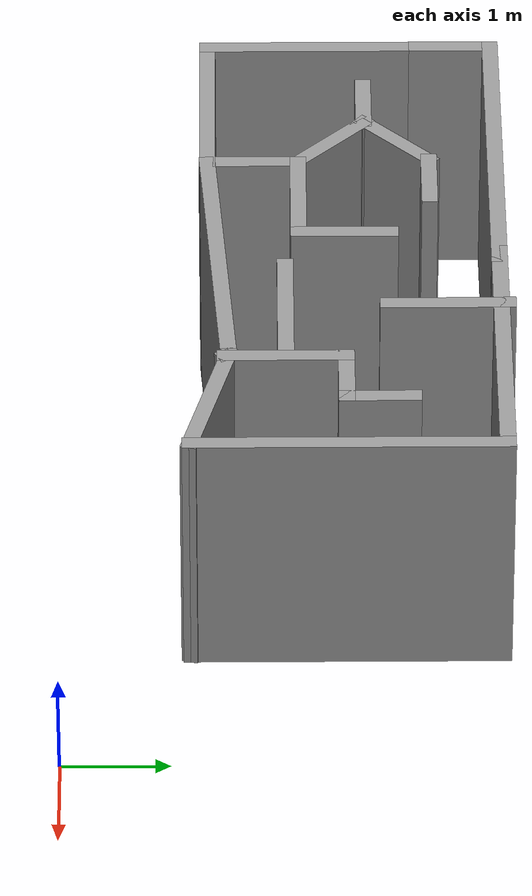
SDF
<?xml version='1.0'?>
<sdf version='1.7'>
  <model name='new_house'>
    <pose>-3.85457 2.0843 0 0 -0 0</pose>
    <link name='Wall_0'>
      <collision name='Wall_0_Collision'>
        <geometry>
          <box>
            <size>3.5 0.15 2.5</size>
          </box>
        </geometry>
        <pose>0 0 1.25 0 -0 0</pose>
      </collision>
      <visual name='Wall_0_Visual'>
        <pose>0 0 1.25 0 -0 0</pose>
        <geometry>
          <box>
            <size>3.5 0.15 2.5</size>
          </box>
        </geometry>
        <material>
          <script>
            <uri>file://media/materials/scripts/gazebo.material</uri>
            <name>Gazebo/Grey</name>
          </script>
          <ambient>1 1 1 1</ambient>
        </material>
        <meta>
          <layer>0</layer>
        </meta>
      </visual>
      <pose>-2.10457 1.94809 0 0 -0 3.14159</pose>
    </link>
    <link name='Wall_1'>
      <collision name='Wall_1_Collision'>
        <geometry>
          <box>
            <size>1 0.15 2.5</size>
          </box>
        </geometry>
        <pose>0 0 1.25 0 -0 0</pose>
      </collision>
      <visual name='Wall_1_Visual'>
        <pose>0 0 1.25 0 -0 0</pose>
        <geometry>
          <box>
            <size>1 0.15 2.5</size>
          </box>
        </geometry>
        <material>
          <script>
            <uri>file://media/materials/scripts/gazebo.material</uri>
            <name>Gazebo/Grey</name>
          </script>
          <ambient>1 1 1 1</ambient>
        </material>
        <meta>
          <layer>0</layer>
        </meta>
      </visual>
      <pose>-3.77957 1.52309 0 0 -0 -1.5708</pose>
    </link>
    <link name='Wall_13'>
      <collision name='Wall_13_Collision'>
        <geometry>
          <box>
            <size>0.249028 0.15 2.5</size>
          </box>
        </geometry>
        <pose>0 0 1.25 0 -0 0</pose>
      </collision>
      <visual name='Wall_13_Visual'>
        <pose>0 0 1.25 0 -0 0</pose>
        <geometry>
          <box>
            <size>0.249028 0.15 2.5</size>
          </box>
        </geometry>
        <material>
          <script>
            <uri>file://media/materials/scripts/gazebo.material</uri>
            <name>Gazebo/Grey</name>
          </script>
          <ambient>1 1 1 1</ambient>
        </material>
        <meta>
          <layer>0</layer>
        </meta>
      </visual>
      <pose>-0.479081 1.94845 0 0 -0 3.13435</pose>
    </link>
    <link name='Wall_14'>
      <collision name='Wall_14_Collision'>
        <geometry>
          <box>
            <size>3 0.15 2.5</size>
          </box>
        </geometry>
        <pose>0 0 1.25 0 -0 0</pose>
      </collision>
      <visual name='Wall_14_Visual'>
        <pose>0 0 1.25 0 -0 0</pose>
        <geometry>
          <box>
            <size>3 0.15 2.5</size>
          </box>
        </geometry>
        <material>
          <script>
            <uri>file://media/materials/scripts/gazebo.material</uri>
            <name>Gazebo/Grey</name>
          </script>
          <ambient>1 1 1 1</ambient>
        </material>
        <meta>
          <layer>0</layer>
        </meta>
      </visual>
      <pose>0.896406 1.9488 0 0 -0 0</pose>
    </link>
    <link name='Wall_15'>
      <collision name='Wall_15_Collision'>
        <geometry>
          <box>
            <size>3 0.15 2.5</size>
          </box>
        </geometry>
        <pose>0 0 1.25 0 -0 0</pose>
      </collision>
      <visual name='Wall_15_Visual'>
        <pose>0 0 1.25 0 -0 0</pose>
        <geometry>
          <box>
            <size>3 0.15 2.5</size>
          </box>
        </geometry>
        <material>
          <script>
            <uri>file://media/materials/scripts/gazebo.material</uri>
            <name>Gazebo/Grey</name>
          </script>
          <ambient>1 1 1 1</ambient>
        </material>
        <meta>
          <layer>0</layer>
        </meta>
      </visual>
      <pose>2.32141 0.523804 0 0 -0 -1.5708</pose>
    </link>
    <link name='Wall_16'>
      <collision name='Wall_16_Collision'>
        <geometry>
          <box>
            <size>1.5 0.15 2.5</size>
          </box>
        </geometry>
        <pose>0 0 1.25 0 -0 0</pose>
      </collision>
      <visual name='Wall_16_Visual'>
        <pose>0 0 1.25 0 -0 0</pose>
        <geometry>
          <box>
            <size>1.5 0.15 2.5</size>
          </box>
        </geometry>
        <material>
          <script>
            <uri>file://media/materials/scripts/gazebo.material</uri>
            <name>Gazebo/Grey</name>
          </script>
          <ambient>1 1 1 1</ambient>
        </material>
        <meta>
          <layer>0</layer>
        </meta>
      </visual>
      <pose>1.66941 -0.726493 0 0 -0 2.87979</pose>
    </link>
    <link name='Wall_17'>
      <collision name='Wall_17_Collision'>
        <geometry>
          <box>
            <size>0.16 0.15 2.5</size>
          </box>
        </geometry>
        <pose>0 0 1.25 0 -0 0</pose>
      </collision>
      <visual name='Wall_17_Visual'>
        <pose>0 0 1.25 0 -0 0</pose>
        <geometry>
          <box>
            <size>0.16 0.15 2.5</size>
          </box>
        </geometry>
        <material>
          <script>
            <uri>file://media/materials/scripts/gazebo.material</uri>
            <name>Gazebo/Grey</name>
          </script>
          <ambient>1 1 1 1</ambient>
        </material>
        <meta>
          <layer>0</layer>
        </meta>
      </visual>
      <pose>1.02241 -0.55179 0 0 -0 0</pose>
    </link>
    <link name='Wall_18'>
      <collision name='Wall_18_Collision'>
        <geometry>
          <box>
            <size>3.11374 0.15 2.5</size>
          </box>
        </geometry>
        <pose>0 0 1.25 0 -0 0</pose>
      </collision>
      <visual name='Wall_18_Visual'>
        <pose>0 0 1.25 0 -0 0</pose>
        <geometry>
          <box>
            <size>3.11374 0.15 2.5</size>
          </box>
        </geometry>
        <material>
          <script>
            <uri>file://media/materials/scripts/gazebo.material</uri>
            <name>Gazebo/Grey</name>
          </script>
          <ambient>1 1 1 1</ambient>
        </material>
        <meta>
          <layer>0</layer>
        </meta>
      </visual>
      <pose>-0.451081 -0.651852 0 0 -0 -3.07402</pose>
    </link>
    <link name='Wall_2'>
      <collision name='Wall_2_Collision'>
        <geometry>
          <box>
            <size>2 0.15 2.5</size>
          </box>
        </geometry>
        <pose>0 0 1.25 0 -0 0</pose>
      </collision>
      <visual name='Wall_2_Visual'>
        <pose>0 0 1.25 0 -0 0</pose>
        <geometry>
          <box>
            <size>2 0.15 2.5</size>
          </box>
        </geometry>
        <material>
          <script>
            <uri>file://media/materials/scripts/gazebo.material</uri>
            <name>Gazebo/Grey</name>
          </script>
          <ambient>1 1 1 1</ambient>
        </material>
        <meta>
          <layer>0</layer>
        </meta>
      </visual>
      <pose>-3.77957 0.173087 0 0 -0 -1.5708</pose>
    </link>
    <link name='Wall_20'>
      <collision name='Wall_20_Collision'>
        <geometry>
          <box>
            <size>0.186564 0.15 2.5</size>
          </box>
        </geometry>
        <pose>0 0 1.25 0 -0 0</pose>
      </collision>
      <visual name='Wall_20_Visual'>
        <pose>0 0 1.25 0 -0 0</pose>
        <geometry>
          <box>
            <size>0.186564 0.15 2.5</size>
          </box>
        </geometry>
        <material>
          <script>
            <uri>file://media/materials/scripts/gazebo.material</uri>
            <name>Gazebo/Grey</name>
          </script>
          <ambient>1 1 1 1</ambient>
        </material>
        <meta>
          <layer>0</layer>
        </meta>
      </visual>
      <pose>1.0358 -0.568034 0 0 -0 -1.09406</pose>
    </link>
    <link name='Wall_21'>
      <collision name='Wall_21_Collision'>
        <geometry>
          <box>
            <size>1.25 0.15 2.5</size>
          </box>
        </geometry>
        <pose>0 0 1.25 0 -0 0</pose>
      </collision>
      <visual name='Wall_21_Visual'>
        <pose>0 0 1.25 0 -0 0</pose>
        <geometry>
          <box>
            <size>1.25 0.15 2.5</size>
          </box>
        </geometry>
        <material>
          <script>
            <uri>file://media/materials/scripts/gazebo.material</uri>
            <name>Gazebo/Grey</name>
          </script>
          <ambient>1 1 1 1</ambient>
        </material>
        <meta>
          <layer>0</layer>
        </meta>
      </visual>
      <pose>1.04418 -0.034277 0 0 -0 1.5708</pose>
    </link>
    <link name='Wall_22'>
      <collision name='Wall_22_Collision'>
        <geometry>
          <box>
            <size>0.75 0.15 2.5</size>
          </box>
        </geometry>
        <pose>0 0 1.25 0 -0 0</pose>
      </collision>
      <visual name='Wall_22_Visual'>
        <pose>0 0 1.25 0 -0 0</pose>
        <geometry>
          <box>
            <size>0.75 0.15 2.5</size>
          </box>
        </geometry>
        <material>
          <script>
            <uri>file://media/materials/scripts/gazebo.material</uri>
            <name>Gazebo/Grey</name>
          </script>
          <ambient>1 1 1 1</ambient>
        </material>
        <meta>
          <layer>0</layer>
        </meta>
      </visual>
      <pose>1.34418 0.515723 0 0 -0 0</pose>
    </link>
    <link name='Wall_23'>
      <collision name='Wall_23_Collision'>
        <geometry>
          <box>
            <size>0.75 0.15 2.5</size>
          </box>
        </geometry>
        <pose>0 0 1.25 0 -0 0</pose>
      </collision>
      <visual name='Wall_23_Visual'>
        <pose>0 0 1.25 0 -0 0</pose>
        <geometry>
          <box>
            <size>0.75 0.15 2.5</size>
          </box>
        </geometry>
        <material>
          <script>
            <uri>file://media/materials/scripts/gazebo.material</uri>
            <name>Gazebo/Grey</name>
          </script>
          <ambient>1 1 1 1</ambient>
        </material>
        <meta>
          <layer>0</layer>
        </meta>
      </visual>
      <pose>1.64419 0.815723 0 0 -0 1.5708</pose>
    </link>
    <link name='Wall_25'>
      <collision name='Wall_25_Collision'>
        <geometry>
          <box>
            <size>1.5 0.15 2.5</size>
          </box>
        </geometry>
        <pose>0 0 1.25 0 -0 0</pose>
      </collision>
      <visual name='Wall_25_Visual'>
        <pose>0 0 1.25 0 -0 0</pose>
        <geometry>
          <box>
            <size>1.5 0.15 2.5</size>
          </box>
        </geometry>
        <material>
          <script>
            <uri>file://media/materials/scripts/gazebo.material</uri>
            <name>Gazebo/Grey</name>
          </script>
          <ambient>1 1 1 1</ambient>
        </material>
        <meta>
          <layer>0</layer>
        </meta>
      </visual>
      <pose>0.336501 -0.032292 0 0 -0 3.14159</pose>
    </link>
    <link name='Wall_27'>
      <collision name='Wall_27_Collision'>
        <geometry>
          <box>
            <size>0.16 0.15 2.5</size>
          </box>
        </geometry>
        <pose>0 0 1.25 0 -0 0</pose>
      </collision>
      <visual name='Wall_27_Visual'>
        <pose>0 0 1.25 0 -0 0</pose>
        <geometry>
          <box>
            <size>0.16 0.15 2.5</size>
          </box>
        </geometry>
        <material>
          <script>
            <uri>file://media/materials/scripts/gazebo.material</uri>
            <name>Gazebo/Grey</name>
          </script>
          <ambient>1 1 1 1</ambient>
        </material>
        <meta>
          <layer>0</layer>
        </meta>
      </visual>
      <pose>0.260357 2.0093 0 0 -0 0</pose>
    </link>
    <link name='Wall_28'>
      <collision name='Wall_28_Collision'>
        <geometry>
          <box>
            <size>1.25 0.15 2.5</size>
          </box>
        </geometry>
        <pose>0 0 1.25 0 -0 0</pose>
      </collision>
      <visual name='Wall_28_Visual'>
        <pose>0 0 1.25 0 -0 0</pose>
        <geometry>
          <box>
            <size>1.25 0.15 2.5</size>
          </box>
        </geometry>
        <material>
          <script>
            <uri>file://media/materials/scripts/gazebo.material</uri>
            <name>Gazebo/Grey</name>
          </script>
          <ambient>1 1 1 1</ambient>
        </material>
        <meta>
          <layer>0</layer>
        </meta>
      </visual>
      <pose>0.265357 1.4593 0 0 -0 -1.5708</pose>
    </link>
    <link name='Wall_3'>
      <collision name='Wall_3_Collision'>
        <geometry>
          <box>
            <size>2 0.15 2.5</size>
          </box>
        </geometry>
        <pose>0 0 1.25 0 -0 0</pose>
      </collision>
      <visual name='Wall_3_Visual'>
        <pose>0 0 1.25 0 -0 0</pose>
        <geometry>
          <box>
            <size>2 0.15 2.5</size>
          </box>
        </geometry>
        <material>
          <script>
            <uri>file://media/materials/scripts/gazebo.material</uri>
            <name>Gazebo/Grey</name>
          </script>
          <ambient>1 1 1 1</ambient>
        </material>
        <meta>
          <layer>0</layer>
        </meta>
      </visual>
      <pose>-2.85457 -0.751913 0 0 -0 0</pose>
    </link>
    <link name='Wall_30'>
      <collision name='Wall_30_Collision'>
        <geometry>
          <box>
            <size>0.190447 0.15 2.5</size>
          </box>
        </geometry>
        <pose>0 0 1.25 0 -0 0</pose>
      </collision>
      <visual name='Wall_30_Visual'>
        <pose>0 0 1.25 0 -0 0</pose>
        <geometry>
          <box>
            <size>0.190447 0.15 2.5</size>
          </box>
        </geometry>
        <material>
          <script>
            <uri>file://media/materials/scripts/gazebo.material</uri>
            <name>Gazebo/Grey</name>
          </script>
          <ambient>1 1 1 1</ambient>
        </material>
        <meta>
          <layer>0</layer>
        </meta>
      </visual>
      <pose>-2.54662 0.71149 0 0 -0 2.48395</pose>
    </link>
    <link name='Wall_31'>
      <collision name='Wall_31_Collision'>
        <geometry>
          <box>
            <size>1 0.15 2.5</size>
          </box>
        </geometry>
        <pose>0 0 1.25 0 -0 0</pose>
      </collision>
      <visual name='Wall_31_Visual'>
        <pose>0 0 1.25 0 -0 0</pose>
        <geometry>
          <box>
            <size>1 0.15 2.5</size>
          </box>
        </geometry>
        <material>
          <script>
            <uri>file://media/materials/scripts/gazebo.material</uri>
            <name>Gazebo/Grey</name>
          </script>
          <ambient>1 1 1 1</ambient>
        </material>
        <meta>
          <layer>0</layer>
        </meta>
      </visual>
      <pose>-2.2621 1.02437 0 0 -0 0.785398</pose>
    </link>
    <link name='Wall_32'>
      <collision name='Wall_32_Collision'>
        <geometry>
          <box>
            <size>0.75 0.15 2.5</size>
          </box>
        </geometry>
        <pose>0 0 1.25 0 -0 0</pose>
      </collision>
      <visual name='Wall_32_Visual'>
        <pose>0 0 1.25 0 -0 0</pose>
        <geometry>
          <box>
            <size>0.75 0.15 2.5</size>
          </box>
        </geometry>
        <material>
          <script>
            <uri>file://media/materials/scripts/gazebo.material</uri>
            <name>Gazebo/Grey</name>
          </script>
          <ambient>1 1 1 1</ambient>
        </material>
        <meta>
          <layer>0</layer>
        </meta>
      </visual>
      <pose>-1.66158 1.32489 0 0 -0 0</pose>
    </link>
    <link name='Wall_34'>
      <collision name='Wall_34_Collision'>
        <geometry>
          <box>
            <size>0.15 0.15 2.5</size>
          </box>
        </geometry>
        <pose>0 0 1.25 0 -0 0</pose>
      </collision>
      <visual name='Wall_34_Visual'>
        <pose>0 0 1.25 0 -0 0</pose>
        <geometry>
          <box>
            <size>0.15 0.15 2.5</size>
          </box>
        </geometry>
        <material>
          <script>
            <uri>file://media/materials/scripts/gazebo.material</uri>
            <name>Gazebo/Grey</name>
          </script>
          <ambient>1 1 1 1</ambient>
        </material>
        <meta>
          <layer>0</layer>
        </meta>
      </visual>
      <pose>-2.56262 0.723851 0 0 -0 0</pose>
    </link>
    <link name='Wall_35'>
      <collision name='Wall_35_Collision'>
        <geometry>
          <box>
            <size>0.75 0.15 2.5</size>
          </box>
        </geometry>
        <pose>0 0 1.25 0 -0 0</pose>
      </collision>
      <visual name='Wall_35_Visual'>
        <pose>0 0 1.25 0 -0 0</pose>
        <geometry>
          <box>
            <size>0.75 0.15 2.5</size>
          </box>
        </geometry>
        <material>
          <script>
            <uri>file://media/materials/scripts/gazebo.material</uri>
            <name>Gazebo/Grey</name>
          </script>
          <ambient>1 1 1 1</ambient>
        </material>
        <meta>
          <layer>0</layer>
        </meta>
      </visual>
      <pose>-2.86262 0.723851 0 0 -0 3.14159</pose>
    </link>
    <link name='Wall_4'>
      <collision name='Wall_4_Collision'>
        <geometry>
          <box>
            <size>1 0.15 2.5</size>
          </box>
        </geometry>
        <pose>0 0 1.25 0 -0 0</pose>
      </collision>
      <visual name='Wall_4_Visual'>
        <pose>0 0 1.25 0 -0 0</pose>
        <geometry>
          <box>
            <size>1 0.15 2.5</size>
          </box>
        </geometry>
        <material>
          <script>
            <uri>file://media/materials/scripts/gazebo.material</uri>
            <name>Gazebo/Grey</name>
          </script>
          <ambient>1 1 1 1</ambient>
        </material>
        <meta>
          <layer>0</layer>
        </meta>
      </visual>
      <pose>-1.92957 -0.326913 0 0 -0 1.5708</pose>
    </link>
    <link name='Wall_5'>
      <collision name='Wall_5_Collision'>
        <geometry>
          <box>
            <size>1 0.15 2.5</size>
          </box>
        </geometry>
        <pose>0 0 1.25 0 -0 0</pose>
      </collision>
      <visual name='Wall_5_Visual'>
        <pose>0 0 1.25 0 -0 0</pose>
        <geometry>
          <box>
            <size>1 0.15 2.5</size>
          </box>
        </geometry>
        <material>
          <script>
            <uri>file://media/materials/scripts/gazebo.material</uri>
            <name>Gazebo/Grey</name>
          </script>
          <ambient>1 1 1 1</ambient>
        </material>
        <meta>
          <layer>0</layer>
        </meta>
      </visual>
      <pose>-2.23009 0.398608 0 0 -0 2.35619</pose>
    </link>
    <link name='Wall_7'>
      <collision name='Wall_7_Collision'>
        <geometry>
          <box>
            <size>1.25 0.15 2.5</size>
          </box>
        </geometry>
        <pose>0 0 1.25 0 -0 0</pose>
      </collision>
      <visual name='Wall_7_Visual'>
        <pose>0 0 1.25 0 -0 0</pose>
        <geometry>
          <box>
            <size>1.25 0.15 2.5</size>
          </box>
        </geometry>
        <material>
          <script>
            <uri>file://media/materials/scripts/gazebo.material</uri>
            <name>Gazebo/Grey</name>
          </script>
          <ambient>1 1 1 1</ambient>
        </material>
        <meta>
          <layer>0</layer>
        </meta>
      </visual>
      <pose>-1.37957 0.098087 0 0 -0 0</pose>
    </link>
    <link name='Wall_8'>
      <collision name='Wall_8_Collision'>
        <geometry>
          <box>
            <size>1 0.15 2.5</size>
          </box>
        </geometry>
        <pose>0 0 1.25 0 -0 0</pose>
      </collision>
      <visual name='Wall_8_Visual'>
        <pose>0 0 1.25 0 -0 0</pose>
        <geometry>
          <box>
            <size>1 0.15 2.5</size>
          </box>
        </geometry>
        <material>
          <script>
            <uri>file://media/materials/scripts/gazebo.material</uri>
            <name>Gazebo/Grey</name>
          </script>
          <ambient>1 1 1 1</ambient>
        </material>
        <meta>
          <layer>0</layer>
        </meta>
      </visual>
      <pose>-0.829568 0.523087 0 0 -0 1.5708</pose>
    </link>
    <static>1</static>
  </model>
</sdf>
